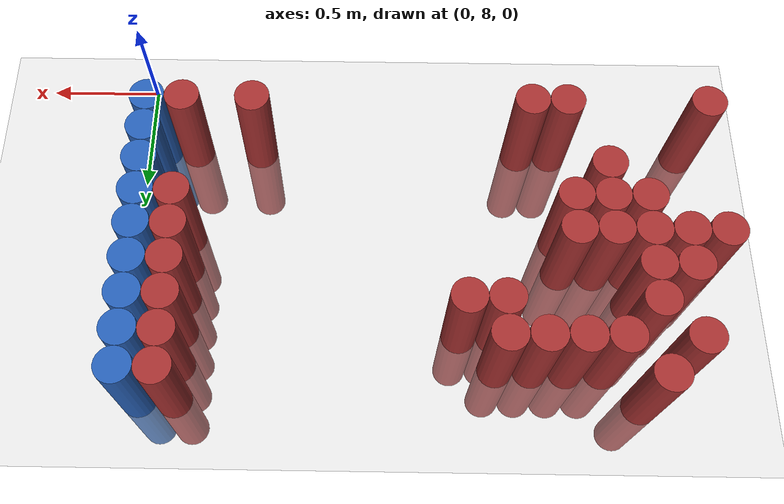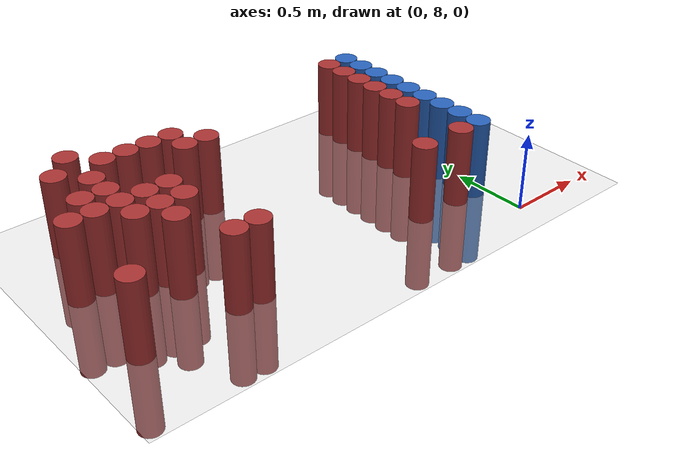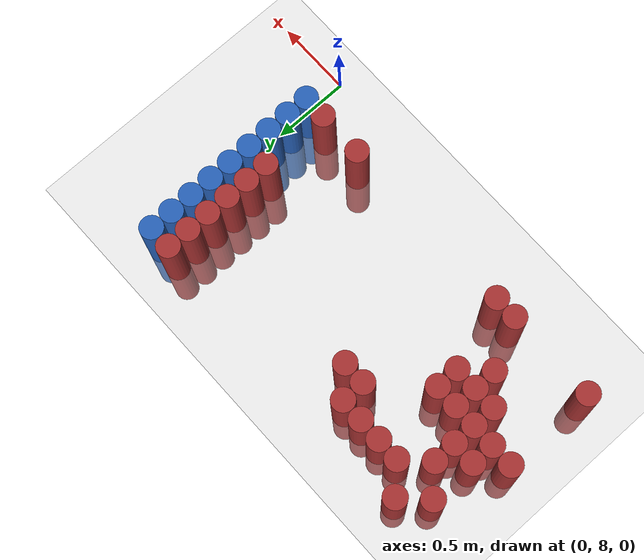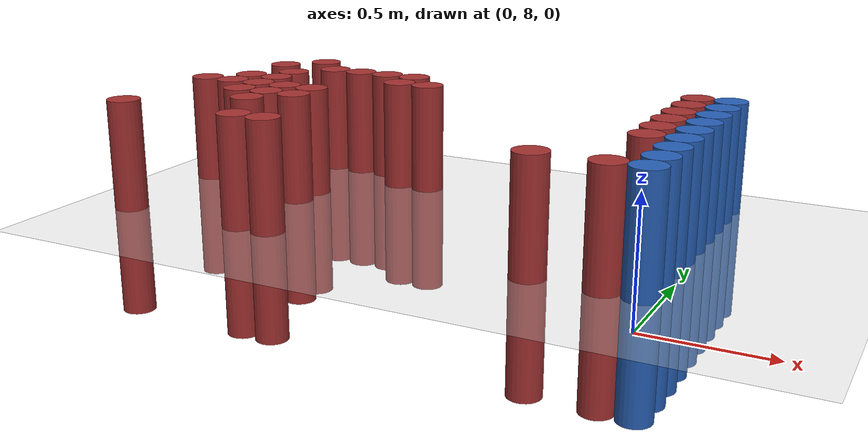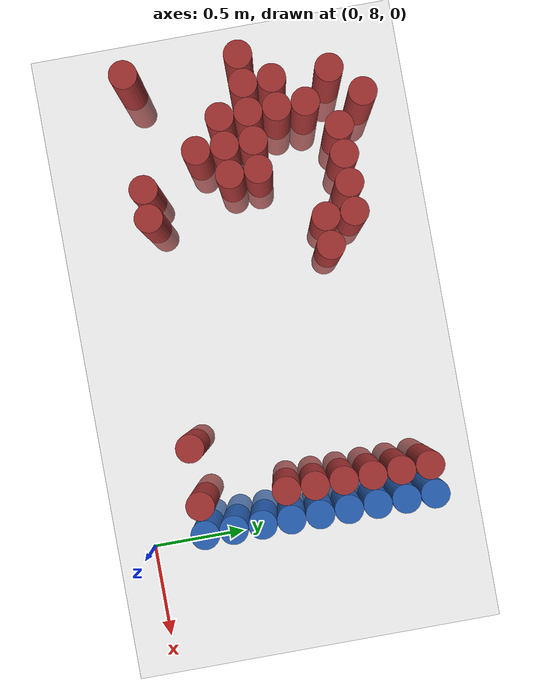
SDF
<sdf version="1.6">
 <world name="default">
  <model name="ground_plane">
   <static>1</static>
   <link name="link">
    <collision name="collision">
     <geometry><plane><normal>0 0 1</normal><size>100 100</size></plane></geometry>
     <surface><friction><ode><mu>100</mu><mu2>50</mu2></ode></friction></surface>
    </collision>
    <visual name="visual">
     <cast_shadows>0</cast_shadows>
     <geometry><plane><normal>0 0 1</normal><size>100 100</size></plane></geometry>
     <material>
      <script><uri>file://media/materials/scripts/gazebo.material</uri><name>Gazebo/Grey</name></script>
     </material>
    </visual>
   </link>
  </model>
  <model name="unit_cylinder_207">
   <static>1</static>
   <pose>-2.475000 8.325000 0.000000 0.000000 0.000000 0.000000</pose>
   <link name="link">
    <inertial>
     <mass>1</mass>
     <inertia><ixx>0.145833</ixx><ixy>0</ixy><ixz>0</ixz><iyy>0.145833</iyy><iyz>0</iyz><izz>0.125</izz></inertia>
    </inertial>
    <collision name="collision">
     <geometry><cylinder><radius>0.075000</radius><length>1</length></cylinder></geometry>
    </collision>
    <visual name="visual">
     <geometry><cylinder><radius>0.075000</radius><length>1</length></cylinder></geometry>
     <material>
      <ambient>0.648000 0.192000 0.192000 1</ambient>
      <diffuse>0.648000 0.192000 0.192000 1</diffuse>
     </material>
     <material>
      <script><name>Gazebo/Grey</name><uri>file://media/materials/scripts/gazebo.material</uri></script>
     </material>
    </visual>
    <sensor name="sensor_contact" type="contact"><contact><collision>collision</collision></contact></sensor>
   </link>
   <plugin filename="gz-sim-touchplugin-system" name="gz::sim::systems::TouchPlugin">
    <target>robot</target>
    <namespace>robot</namespace>
    <time>0.001</time>
    <enabled>true</enabled>
   </plugin>
  </model>
  <model name="unit_cylinder_208">
   <static>1</static>
   <pose>-2.475000 8.925000 0.000000 0.000000 0.000000 0.000000</pose>
   <link name="link">
    <inertial>
     <mass>1</mass>
     <inertia><ixx>0.145833</ixx><ixy>0</ixy><ixz>0</ixz><iyy>0.145833</iyy><iyz>0</iyz><izz>0.125</izz></inertia>
    </inertial>
    <collision name="collision">
     <geometry><cylinder><radius>0.075000</radius><length>1</length></cylinder></geometry>
    </collision>
    <visual name="visual">
     <geometry><cylinder><radius>0.075000</radius><length>1</length></cylinder></geometry>
     <material>
      <ambient>0.648000 0.192000 0.192000 1</ambient>
      <diffuse>0.648000 0.192000 0.192000 1</diffuse>
     </material>
     <material>
      <script><name>Gazebo/Grey</name><uri>file://media/materials/scripts/gazebo.material</uri></script>
     </material>
    </visual>
    <sensor name="sensor_contact" type="contact"><contact><collision>collision</collision></contact></sensor>
   </link>
   <plugin filename="gz-sim-touchplugin-system" name="gz::sim::systems::TouchPlugin">
    <target>robot</target>
    <namespace>robot</namespace>
    <time>0.001</time>
    <enabled>true</enabled>
   </plugin>
  </model>
  <model name="unit_cylinder_212">
   <static>1</static>
   <pose>-2.325000 8.925000 0.000000 0.000000 0.000000 0.000000</pose>
   <link name="link">
    <inertial>
     <mass>1</mass>
     <inertia><ixx>0.145833</ixx><ixy>0</ixy><ixz>0</ixz><iyy>0.145833</iyy><iyz>0</iyz><izz>0.125</izz></inertia>
    </inertial>
    <collision name="collision">
     <geometry><cylinder><radius>0.075000</radius><length>1</length></cylinder></geometry>
    </collision>
    <visual name="visual">
     <geometry><cylinder><radius>0.075000</radius><length>1</length></cylinder></geometry>
     <material>
      <ambient>0.648000 0.192000 0.192000 1</ambient>
      <diffuse>0.648000 0.192000 0.192000 1</diffuse>
     </material>
     <material>
      <script><name>Gazebo/Grey</name><uri>file://media/materials/scripts/gazebo.material</uri></script>
     </material>
    </visual>
    <sensor name="sensor_contact" type="contact"><contact><collision>collision</collision></contact></sensor>
   </link>
   <plugin filename="gz-sim-touchplugin-system" name="gz::sim::systems::TouchPlugin">
    <target>robot</target>
    <namespace>robot</namespace>
    <time>0.001</time>
    <enabled>true</enabled>
   </plugin>
  </model>
  <model name="unit_cylinder_213">
   <static>1</static>
   <pose>-2.325000 9.075000 0.000000 0.000000 0.000000 0.000000</pose>
   <link name="link">
    <inertial>
     <mass>1</mass>
     <inertia><ixx>0.145833</ixx><ixy>0</ixy><ixz>0</ixz><iyy>0.145833</iyy><iyz>0</iyz><izz>0.125</izz></inertia>
    </inertial>
    <collision name="collision">
     <geometry><cylinder><radius>0.075000</radius><length>1</length></cylinder></geometry>
    </collision>
    <visual name="visual">
     <geometry><cylinder><radius>0.075000</radius><length>1</length></cylinder></geometry>
     <material>
      <ambient>0.648000 0.192000 0.192000 1</ambient>
      <diffuse>0.648000 0.192000 0.192000 1</diffuse>
     </material>
     <material>
      <script><name>Gazebo/Grey</name><uri>file://media/materials/scripts/gazebo.material</uri></script>
     </material>
    </visual>
    <sensor name="sensor_contact" type="contact"><contact><collision>collision</collision></contact></sensor>
   </link>
   <plugin filename="gz-sim-touchplugin-system" name="gz::sim::systems::TouchPlugin">
    <target>robot</target>
    <namespace>robot</namespace>
    <time>0.001</time>
    <enabled>true</enabled>
   </plugin>
  </model>
  <model name="unit_cylinder_214">
   <static>1</static>
   <pose>-2.325000 9.375000 0.000000 0.000000 0.000000 0.000000</pose>
   <link name="link">
    <inertial>
     <mass>1</mass>
     <inertia><ixx>0.145833</ixx><ixy>0</ixy><ixz>0</ixz><iyy>0.145833</iyy><iyz>0</iyz><izz>0.125</izz></inertia>
    </inertial>
    <collision name="collision">
     <geometry><cylinder><radius>0.075000</radius><length>1</length></cylinder></geometry>
    </collision>
    <visual name="visual">
     <geometry><cylinder><radius>0.075000</radius><length>1</length></cylinder></geometry>
     <material>
      <ambient>0.648000 0.192000 0.192000 1</ambient>
      <diffuse>0.648000 0.192000 0.192000 1</diffuse>
     </material>
     <material>
      <script><name>Gazebo/Grey</name><uri>file://media/materials/scripts/gazebo.material</uri></script>
     </material>
    </visual>
    <sensor name="sensor_contact" type="contact"><contact><collision>collision</collision></contact></sensor>
   </link>
   <plugin filename="gz-sim-touchplugin-system" name="gz::sim::systems::TouchPlugin">
    <target>robot</target>
    <namespace>robot</namespace>
    <time>0.001</time>
    <enabled>true</enabled>
   </plugin>
  </model>
  <model name="unit_cylinder_217">
   <static>1</static>
   <pose>-2.175000 8.775000 0.000000 0.000000 0.000000 0.000000</pose>
   <link name="link">
    <inertial>
     <mass>1</mass>
     <inertia><ixx>0.145833</ixx><ixy>0</ixy><ixz>0</ixz><iyy>0.145833</iyy><iyz>0</iyz><izz>0.125</izz></inertia>
    </inertial>
    <collision name="collision">
     <geometry><cylinder><radius>0.075000</radius><length>1</length></cylinder></geometry>
    </collision>
    <visual name="visual">
     <geometry><cylinder><radius>0.075000</radius><length>1</length></cylinder></geometry>
     <material>
      <ambient>0.648000 0.192000 0.192000 1</ambient>
      <diffuse>0.648000 0.192000 0.192000 1</diffuse>
     </material>
     <material>
      <script><name>Gazebo/Grey</name><uri>file://media/materials/scripts/gazebo.material</uri></script>
     </material>
    </visual>
    <sensor name="sensor_contact" type="contact"><contact><collision>collision</collision></contact></sensor>
   </link>
   <plugin filename="gz-sim-touchplugin-system" name="gz::sim::systems::TouchPlugin">
    <target>robot</target>
    <namespace>robot</namespace>
    <time>0.001</time>
    <enabled>true</enabled>
   </plugin>
  </model>
  <model name="unit_cylinder_218">
   <static>1</static>
   <pose>-2.175000 8.925000 0.000000 0.000000 0.000000 0.000000</pose>
   <link name="link">
    <inertial>
     <mass>1</mass>
     <inertia><ixx>0.145833</ixx><ixy>0</ixy><ixz>0</ixz><iyy>0.145833</iyy><iyz>0</iyz><izz>0.125</izz></inertia>
    </inertial>
    <collision name="collision">
     <geometry><cylinder><radius>0.075000</radius><length>1</length></cylinder></geometry>
    </collision>
    <visual name="visual">
     <geometry><cylinder><radius>0.075000</radius><length>1</length></cylinder></geometry>
     <material>
      <ambient>0.648000 0.192000 0.192000 1</ambient>
      <diffuse>0.648000 0.192000 0.192000 1</diffuse>
     </material>
     <material>
      <script><name>Gazebo/Grey</name><uri>file://media/materials/scripts/gazebo.material</uri></script>
     </material>
    </visual>
    <sensor name="sensor_contact" type="contact"><contact><collision>collision</collision></contact></sensor>
   </link>
   <plugin filename="gz-sim-touchplugin-system" name="gz::sim::systems::TouchPlugin">
    <target>robot</target>
    <namespace>robot</namespace>
    <time>0.001</time>
    <enabled>true</enabled>
   </plugin>
  </model>
  <model name="unit_cylinder_219">
   <static>1</static>
   <pose>-2.175000 9.075000 0.000000 0.000000 0.000000 0.000000</pose>
   <link name="link">
    <inertial>
     <mass>1</mass>
     <inertia><ixx>0.145833</ixx><ixy>0</ixy><ixz>0</ixz><iyy>0.145833</iyy><iyz>0</iyz><izz>0.125</izz></inertia>
    </inertial>
    <collision name="collision">
     <geometry><cylinder><radius>0.075000</radius><length>1</length></cylinder></geometry>
    </collision>
    <visual name="visual">
     <geometry><cylinder><radius>0.075000</radius><length>1</length></cylinder></geometry>
     <material>
      <ambient>0.648000 0.192000 0.192000 1</ambient>
      <diffuse>0.648000 0.192000 0.192000 1</diffuse>
     </material>
     <material>
      <script><name>Gazebo/Grey</name><uri>file://media/materials/scripts/gazebo.material</uri></script>
     </material>
    </visual>
    <sensor name="sensor_contact" type="contact"><contact><collision>collision</collision></contact></sensor>
   </link>
   <plugin filename="gz-sim-touchplugin-system" name="gz::sim::systems::TouchPlugin">
    <target>robot</target>
    <namespace>robot</namespace>
    <time>0.001</time>
    <enabled>true</enabled>
   </plugin>
  </model>
  <model name="unit_cylinder_220">
   <static>1</static>
   <pose>-2.175000 9.225000 0.000000 0.000000 0.000000 0.000000</pose>
   <link name="link">
    <inertial>
     <mass>1</mass>
     <inertia><ixx>0.145833</ixx><ixy>0</ixy><ixz>0</ixz><iyy>0.145833</iyy><iyz>0</iyz><izz>0.125</izz></inertia>
    </inertial>
    <collision name="collision">
     <geometry><cylinder><radius>0.075000</radius><length>1</length></cylinder></geometry>
    </collision>
    <visual name="visual">
     <geometry><cylinder><radius>0.075000</radius><length>1</length></cylinder></geometry>
     <material>
      <ambient>0.648000 0.192000 0.192000 1</ambient>
      <diffuse>0.648000 0.192000 0.192000 1</diffuse>
     </material>
     <material>
      <script><name>Gazebo/Grey</name><uri>file://media/materials/scripts/gazebo.material</uri></script>
     </material>
    </visual>
    <sensor name="sensor_contact" type="contact"><contact><collision>collision</collision></contact></sensor>
   </link>
   <plugin filename="gz-sim-touchplugin-system" name="gz::sim::systems::TouchPlugin">
    <target>robot</target>
    <namespace>robot</namespace>
    <time>0.001</time>
    <enabled>true</enabled>
   </plugin>
  </model>
  <model name="unit_cylinder_221">
   <static>1</static>
   <pose>-2.175000 9.525000 0.000000 0.000000 0.000000 0.000000</pose>
   <link name="link">
    <inertial>
     <mass>1</mass>
     <inertia><ixx>0.145833</ixx><ixy>0</ixy><ixz>0</ixz><iyy>0.145833</iyy><iyz>0</iyz><izz>0.125</izz></inertia>
    </inertial>
    <collision name="collision">
     <geometry><cylinder><radius>0.075000</radius><length>1</length></cylinder></geometry>
    </collision>
    <visual name="visual">
     <geometry><cylinder><radius>0.075000</radius><length>1</length></cylinder></geometry>
     <material>
      <ambient>0.648000 0.192000 0.192000 1</ambient>
      <diffuse>0.648000 0.192000 0.192000 1</diffuse>
     </material>
     <material>
      <script><name>Gazebo/Grey</name><uri>file://media/materials/scripts/gazebo.material</uri></script>
     </material>
    </visual>
    <sensor name="sensor_contact" type="contact"><contact><collision>collision</collision></contact></sensor>
   </link>
   <plugin filename="gz-sim-touchplugin-system" name="gz::sim::systems::TouchPlugin">
    <target>robot</target>
    <namespace>robot</namespace>
    <time>0.001</time>
    <enabled>true</enabled>
   </plugin>
  </model>
  <model name="unit_cylinder_222">
   <static>1</static>
   <pose>-2.025000 8.625000 0.000000 0.000000 0.000000 0.000000</pose>
   <link name="link">
    <inertial>
     <mass>1</mass>
     <inertia><ixx>0.145833</ixx><ixy>0</ixy><ixz>0</ixz><iyy>0.145833</iyy><iyz>0</iyz><izz>0.125</izz></inertia>
    </inertial>
    <collision name="collision">
     <geometry><cylinder><radius>0.075000</radius><length>1</length></cylinder></geometry>
    </collision>
    <visual name="visual">
     <geometry><cylinder><radius>0.075000</radius><length>1</length></cylinder></geometry>
     <material>
      <ambient>0.648000 0.192000 0.192000 1</ambient>
      <diffuse>0.648000 0.192000 0.192000 1</diffuse>
     </material>
     <material>
      <script><name>Gazebo/Grey</name><uri>file://media/materials/scripts/gazebo.material</uri></script>
     </material>
    </visual>
    <sensor name="sensor_contact" type="contact"><contact><collision>collision</collision></contact></sensor>
   </link>
   <plugin filename="gz-sim-touchplugin-system" name="gz::sim::systems::TouchPlugin">
    <target>robot</target>
    <namespace>robot</namespace>
    <time>0.001</time>
    <enabled>true</enabled>
   </plugin>
  </model>
  <model name="unit_cylinder_223">
   <static>1</static>
   <pose>-2.025000 8.775000 0.000000 0.000000 0.000000 0.000000</pose>
   <link name="link">
    <inertial>
     <mass>1</mass>
     <inertia><ixx>0.145833</ixx><ixy>0</ixy><ixz>0</ixz><iyy>0.145833</iyy><iyz>0</iyz><izz>0.125</izz></inertia>
    </inertial>
    <collision name="collision">
     <geometry><cylinder><radius>0.075000</radius><length>1</length></cylinder></geometry>
    </collision>
    <visual name="visual">
     <geometry><cylinder><radius>0.075000</radius><length>1</length></cylinder></geometry>
     <material>
      <ambient>0.648000 0.192000 0.192000 1</ambient>
      <diffuse>0.648000 0.192000 0.192000 1</diffuse>
     </material>
     <material>
      <script><name>Gazebo/Grey</name><uri>file://media/materials/scripts/gazebo.material</uri></script>
     </material>
    </visual>
    <sensor name="sensor_contact" type="contact"><contact><collision>collision</collision></contact></sensor>
   </link>
   <plugin filename="gz-sim-touchplugin-system" name="gz::sim::systems::TouchPlugin">
    <target>robot</target>
    <namespace>robot</namespace>
    <time>0.001</time>
    <enabled>true</enabled>
   </plugin>
  </model>
  <model name="unit_cylinder_224">
   <static>1</static>
   <pose>-2.025000 8.925000 0.000000 0.000000 0.000000 0.000000</pose>
   <link name="link">
    <inertial>
     <mass>1</mass>
     <inertia><ixx>0.145833</ixx><ixy>0</ixy><ixz>0</ixz><iyy>0.145833</iyy><iyz>0</iyz><izz>0.125</izz></inertia>
    </inertial>
    <collision name="collision">
     <geometry><cylinder><radius>0.075000</radius><length>1</length></cylinder></geometry>
    </collision>
    <visual name="visual">
     <geometry><cylinder><radius>0.075000</radius><length>1</length></cylinder></geometry>
     <material>
      <ambient>0.648000 0.192000 0.192000 1</ambient>
      <diffuse>0.648000 0.192000 0.192000 1</diffuse>
     </material>
     <material>
      <script><name>Gazebo/Grey</name><uri>file://media/materials/scripts/gazebo.material</uri></script>
     </material>
    </visual>
    <sensor name="sensor_contact" type="contact"><contact><collision>collision</collision></contact></sensor>
   </link>
   <plugin filename="gz-sim-touchplugin-system" name="gz::sim::systems::TouchPlugin">
    <target>robot</target>
    <namespace>robot</namespace>
    <time>0.001</time>
    <enabled>true</enabled>
   </plugin>
  </model>
  <model name="unit_cylinder_225">
   <static>1</static>
   <pose>-2.025000 9.375000 0.000000 0.000000 0.000000 0.000000</pose>
   <link name="link">
    <inertial>
     <mass>1</mass>
     <inertia><ixx>0.145833</ixx><ixy>0</ixy><ixz>0</ixz><iyy>0.145833</iyy><iyz>0</iyz><izz>0.125</izz></inertia>
    </inertial>
    <collision name="collision">
     <geometry><cylinder><radius>0.075000</radius><length>1</length></cylinder></geometry>
    </collision>
    <visual name="visual">
     <geometry><cylinder><radius>0.075000</radius><length>1</length></cylinder></geometry>
     <material>
      <ambient>0.648000 0.192000 0.192000 1</ambient>
      <diffuse>0.648000 0.192000 0.192000 1</diffuse>
     </material>
     <material>
      <script><name>Gazebo/Grey</name><uri>file://media/materials/scripts/gazebo.material</uri></script>
     </material>
    </visual>
    <sensor name="sensor_contact" type="contact"><contact><collision>collision</collision></contact></sensor>
   </link>
   <plugin filename="gz-sim-touchplugin-system" name="gz::sim::systems::TouchPlugin">
    <target>robot</target>
    <namespace>robot</namespace>
    <time>0.001</time>
    <enabled>true</enabled>
   </plugin>
  </model>
  <model name="unit_cylinder_229">
   <static>1</static>
   <pose>-1.875000 8.325000 0.000000 0.000000 0.000000 0.000000</pose>
   <link name="link">
    <inertial>
     <mass>1</mass>
     <inertia><ixx>0.145833</ixx><ixy>0</ixy><ixz>0</ixz><iyy>0.145833</iyy><iyz>0</iyz><izz>0.125</izz></inertia>
    </inertial>
    <collision name="collision">
     <geometry><cylinder><radius>0.075000</radius><length>1</length></cylinder></geometry>
    </collision>
    <visual name="visual">
     <geometry><cylinder><radius>0.075000</radius><length>1</length></cylinder></geometry>
     <material>
      <ambient>0.648000 0.192000 0.192000 1</ambient>
      <diffuse>0.648000 0.192000 0.192000 1</diffuse>
     </material>
     <material>
      <script><name>Gazebo/Grey</name><uri>file://media/materials/scripts/gazebo.material</uri></script>
     </material>
    </visual>
    <sensor name="sensor_contact" type="contact"><contact><collision>collision</collision></contact></sensor>
   </link>
   <plugin filename="gz-sim-touchplugin-system" name="gz::sim::systems::TouchPlugin">
    <target>robot</target>
    <namespace>robot</namespace>
    <time>0.001</time>
    <enabled>true</enabled>
   </plugin>
  </model>
  <model name="unit_cylinder_230">
   <static>1</static>
   <pose>-1.875000 8.775000 0.000000 0.000000 0.000000 0.000000</pose>
   <link name="link">
    <inertial>
     <mass>1</mass>
     <inertia><ixx>0.145833</ixx><ixy>0</ixy><ixz>0</ixz><iyy>0.145833</iyy><iyz>0</iyz><izz>0.125</izz></inertia>
    </inertial>
    <collision name="collision">
     <geometry><cylinder><radius>0.075000</radius><length>1</length></cylinder></geometry>
    </collision>
    <visual name="visual">
     <geometry><cylinder><radius>0.075000</radius><length>1</length></cylinder></geometry>
     <material>
      <ambient>0.648000 0.192000 0.192000 1</ambient>
      <diffuse>0.648000 0.192000 0.192000 1</diffuse>
     </material>
     <material>
      <script><name>Gazebo/Grey</name><uri>file://media/materials/scripts/gazebo.material</uri></script>
     </material>
    </visual>
    <sensor name="sensor_contact" type="contact"><contact><collision>collision</collision></contact></sensor>
   </link>
   <plugin filename="gz-sim-touchplugin-system" name="gz::sim::systems::TouchPlugin">
    <target>robot</target>
    <namespace>robot</namespace>
    <time>0.001</time>
    <enabled>true</enabled>
   </plugin>
  </model>
  <model name="unit_cylinder_231">
   <static>1</static>
   <pose>-1.875000 8.925000 0.000000 0.000000 0.000000 0.000000</pose>
   <link name="link">
    <inertial>
     <mass>1</mass>
     <inertia><ixx>0.145833</ixx><ixy>0</ixy><ixz>0</ixz><iyy>0.145833</iyy><iyz>0</iyz><izz>0.125</izz></inertia>
    </inertial>
    <collision name="collision">
     <geometry><cylinder><radius>0.075000</radius><length>1</length></cylinder></geometry>
    </collision>
    <visual name="visual">
     <geometry><cylinder><radius>0.075000</radius><length>1</length></cylinder></geometry>
     <material>
      <ambient>0.648000 0.192000 0.192000 1</ambient>
      <diffuse>0.648000 0.192000 0.192000 1</diffuse>
     </material>
     <material>
      <script><name>Gazebo/Grey</name><uri>file://media/materials/scripts/gazebo.material</uri></script>
     </material>
    </visual>
    <sensor name="sensor_contact" type="contact"><contact><collision>collision</collision></contact></sensor>
   </link>
   <plugin filename="gz-sim-touchplugin-system" name="gz::sim::systems::TouchPlugin">
    <target>robot</target>
    <namespace>robot</namespace>
    <time>0.001</time>
    <enabled>true</enabled>
   </plugin>
  </model>
  <model name="unit_cylinder_232">
   <static>1</static>
   <pose>-1.875000 9.375000 0.000000 0.000000 0.000000 0.000000</pose>
   <link name="link">
    <inertial>
     <mass>1</mass>
     <inertia><ixx>0.145833</ixx><ixy>0</ixy><ixz>0</ixz><iyy>0.145833</iyy><iyz>0</iyz><izz>0.125</izz></inertia>
    </inertial>
    <collision name="collision">
     <geometry><cylinder><radius>0.075000</radius><length>1</length></cylinder></geometry>
    </collision>
    <visual name="visual">
     <geometry><cylinder><radius>0.075000</radius><length>1</length></cylinder></geometry>
     <material>
      <ambient>0.648000 0.192000 0.192000 1</ambient>
      <diffuse>0.648000 0.192000 0.192000 1</diffuse>
     </material>
     <material>
      <script><name>Gazebo/Grey</name><uri>file://media/materials/scripts/gazebo.material</uri></script>
     </material>
    </visual>
    <sensor name="sensor_contact" type="contact"><contact><collision>collision</collision></contact></sensor>
   </link>
   <plugin filename="gz-sim-touchplugin-system" name="gz::sim::systems::TouchPlugin">
    <target>robot</target>
    <namespace>robot</namespace>
    <time>0.001</time>
    <enabled>true</enabled>
   </plugin>
  </model>
  <model name="unit_cylinder_240">
   <static>1</static>
   <pose>-1.725000 8.325000 0.000000 0.000000 0.000000 0.000000</pose>
   <link name="link">
    <inertial>
     <mass>1</mass>
     <inertia><ixx>0.145833</ixx><ixy>0</ixy><ixz>0</ixz><iyy>0.145833</iyy><iyz>0</iyz><izz>0.125</izz></inertia>
    </inertial>
    <collision name="collision">
     <geometry><cylinder><radius>0.075000</radius><length>1</length></cylinder></geometry>
    </collision>
    <visual name="visual">
     <geometry><cylinder><radius>0.075000</radius><length>1</length></cylinder></geometry>
     <material>
      <ambient>0.648000 0.192000 0.192000 1</ambient>
      <diffuse>0.648000 0.192000 0.192000 1</diffuse>
     </material>
     <material>
      <script><name>Gazebo/Grey</name><uri>file://media/materials/scripts/gazebo.material</uri></script>
     </material>
    </visual>
    <sensor name="sensor_contact" type="contact"><contact><collision>collision</collision></contact></sensor>
   </link>
   <plugin filename="gz-sim-touchplugin-system" name="gz::sim::systems::TouchPlugin">
    <target>robot</target>
    <namespace>robot</namespace>
    <time>0.001</time>
    <enabled>true</enabled>
   </plugin>
  </model>
  <model name="unit_cylinder_241">
   <static>1</static>
   <pose>-1.725000 9.375000 0.000000 0.000000 0.000000 0.000000</pose>
   <link name="link">
    <inertial>
     <mass>1</mass>
     <inertia><ixx>0.145833</ixx><ixy>0</ixy><ixz>0</ixz><iyy>0.145833</iyy><iyz>0</iyz><izz>0.125</izz></inertia>
    </inertial>
    <collision name="collision">
     <geometry><cylinder><radius>0.075000</radius><length>1</length></cylinder></geometry>
    </collision>
    <visual name="visual">
     <geometry><cylinder><radius>0.075000</radius><length>1</length></cylinder></geometry>
     <material>
      <ambient>0.648000 0.192000 0.192000 1</ambient>
      <diffuse>0.648000 0.192000 0.192000 1</diffuse>
     </material>
     <material>
      <script><name>Gazebo/Grey</name><uri>file://media/materials/scripts/gazebo.material</uri></script>
     </material>
    </visual>
    <sensor name="sensor_contact" type="contact"><contact><collision>collision</collision></contact></sensor>
   </link>
   <plugin filename="gz-sim-touchplugin-system" name="gz::sim::systems::TouchPlugin">
    <target>robot</target>
    <namespace>robot</namespace>
    <time>0.001</time>
    <enabled>true</enabled>
   </plugin>
  </model>
  <model name="unit_cylinder_254">
   <static>1</static>
   <pose>-1.575000 9.225000 0.000000 0.000000 0.000000 0.000000</pose>
   <link name="link">
    <inertial>
     <mass>1</mass>
     <inertia><ixx>0.145833</ixx><ixy>0</ixy><ixz>0</ixz><iyy>0.145833</iyy><iyz>0</iyz><izz>0.125</izz></inertia>
    </inertial>
    <collision name="collision">
     <geometry><cylinder><radius>0.075000</radius><length>1</length></cylinder></geometry>
    </collision>
    <visual name="visual">
     <geometry><cylinder><radius>0.075000</radius><length>1</length></cylinder></geometry>
     <material>
      <ambient>0.648000 0.192000 0.192000 1</ambient>
      <diffuse>0.648000 0.192000 0.192000 1</diffuse>
     </material>
     <material>
      <script><name>Gazebo/Grey</name><uri>file://media/materials/scripts/gazebo.material</uri></script>
     </material>
    </visual>
    <sensor name="sensor_contact" type="contact"><contact><collision>collision</collision></contact></sensor>
   </link>
   <plugin filename="gz-sim-touchplugin-system" name="gz::sim::systems::TouchPlugin">
    <target>robot</target>
    <namespace>robot</namespace>
    <time>0.001</time>
    <enabled>true</enabled>
   </plugin>
  </model>
  <model name="unit_cylinder_255">
   <static>1</static>
   <pose>-1.575000 9.375000 0.000000 0.000000 0.000000 0.000000</pose>
   <link name="link">
    <inertial>
     <mass>1</mass>
     <inertia><ixx>0.145833</ixx><ixy>0</ixy><ixz>0</ixz><iyy>0.145833</iyy><iyz>0</iyz><izz>0.125</izz></inertia>
    </inertial>
    <collision name="collision">
     <geometry><cylinder><radius>0.075000</radius><length>1</length></cylinder></geometry>
    </collision>
    <visual name="visual">
     <geometry><cylinder><radius>0.075000</radius><length>1</length></cylinder></geometry>
     <material>
      <ambient>0.648000 0.192000 0.192000 1</ambient>
      <diffuse>0.648000 0.192000 0.192000 1</diffuse>
     </material>
     <material>
      <script><name>Gazebo/Grey</name><uri>file://media/materials/scripts/gazebo.material</uri></script>
     </material>
    </visual>
    <sensor name="sensor_contact" type="contact"><contact><collision>collision</collision></contact></sensor>
   </link>
   <plugin filename="gz-sim-touchplugin-system" name="gz::sim::systems::TouchPlugin">
    <target>robot</target>
    <namespace>robot</namespace>
    <time>0.001</time>
    <enabled>true</enabled>
   </plugin>
  </model>
  <model name="unit_cylinder_264">
   <static>1</static>
   <pose>-1.425000 9.225000 0.000000 0.000000 0.000000 0.000000</pose>
   <link name="link">
    <inertial>
     <mass>1</mass>
     <inertia><ixx>0.145833</ixx><ixy>0</ixy><ixz>0</ixz><iyy>0.145833</iyy><iyz>0</iyz><izz>0.125</izz></inertia>
    </inertial>
    <collision name="collision">
     <geometry><cylinder><radius>0.075000</radius><length>1</length></cylinder></geometry>
    </collision>
    <visual name="visual">
     <geometry><cylinder><radius>0.075000</radius><length>1</length></cylinder></geometry>
     <material>
      <ambient>0.648000 0.192000 0.192000 1</ambient>
      <diffuse>0.648000 0.192000 0.192000 1</diffuse>
     </material>
     <material>
      <script><name>Gazebo/Grey</name><uri>file://media/materials/scripts/gazebo.material</uri></script>
     </material>
    </visual>
    <sensor name="sensor_contact" type="contact"><contact><collision>collision</collision></contact></sensor>
   </link>
   <plugin filename="gz-sim-touchplugin-system" name="gz::sim::systems::TouchPlugin">
    <target>robot</target>
    <namespace>robot</namespace>
    <time>0.001</time>
    <enabled>true</enabled>
   </plugin>
  </model>
  <model name="unit_cylinder_290">
   <static>1</static>
   <pose>-0.525000 8.325000 0.000000 0.000000 0.000000 0.000000</pose>
   <link name="link">
    <inertial>
     <mass>1</mass>
     <inertia><ixx>0.145833</ixx><ixy>0</ixy><ixz>0</ixz><iyy>0.145833</iyy><iyz>0</iyz><izz>0.125</izz></inertia>
    </inertial>
    <collision name="collision">
     <geometry><cylinder><radius>0.075000</radius><length>1</length></cylinder></geometry>
    </collision>
    <visual name="visual">
     <geometry><cylinder><radius>0.075000</radius><length>1</length></cylinder></geometry>
     <material>
      <ambient>0.648000 0.192000 0.192000 1</ambient>
      <diffuse>0.648000 0.192000 0.192000 1</diffuse>
     </material>
     <material>
      <script><name>Gazebo/Grey</name><uri>file://media/materials/scripts/gazebo.material</uri></script>
     </material>
    </visual>
    <sensor name="sensor_contact" type="contact"><contact><collision>collision</collision></contact></sensor>
   </link>
   <plugin filename="gz-sim-touchplugin-system" name="gz::sim::systems::TouchPlugin">
    <target>robot</target>
    <namespace>robot</namespace>
    <time>0.001</time>
    <enabled>true</enabled>
   </plugin>
  </model>
  <model name="unit_cylinder_318">
   <static>1</static>
   <pose>-0.225000 8.325000 0.000000 0.000000 0.000000 0.000000</pose>
   <link name="link">
    <inertial>
     <mass>1</mass>
     <inertia><ixx>0.145833</ixx><ixy>0</ixy><ixz>0</ixz><iyy>0.145833</iyy><iyz>0</iyz><izz>0.125</izz></inertia>
    </inertial>
    <collision name="collision">
     <geometry><cylinder><radius>0.075000</radius><length>1</length></cylinder></geometry>
    </collision>
    <visual name="visual">
     <geometry><cylinder><radius>0.075000</radius><length>1</length></cylinder></geometry>
     <material>
      <ambient>0.648000 0.192000 0.192000 1</ambient>
      <diffuse>0.648000 0.192000 0.192000 1</diffuse>
     </material>
     <material>
      <script><name>Gazebo/Grey</name><uri>file://media/materials/scripts/gazebo.material</uri></script>
     </material>
    </visual>
    <sensor name="sensor_contact" type="contact"><contact><collision>collision</collision></contact></sensor>
   </link>
   <plugin filename="gz-sim-touchplugin-system" name="gz::sim::systems::TouchPlugin">
    <target>robot</target>
    <namespace>robot</namespace>
    <time>0.001</time>
    <enabled>true</enabled>
   </plugin>
  </model>
  <model name="unit_cylinder_319">
   <static>1</static>
   <pose>-0.225000 8.775000 0.000000 0.000000 0.000000 0.000000</pose>
   <link name="link">
    <inertial>
     <mass>1</mass>
     <inertia><ixx>0.145833</ixx><ixy>0</ixy><ixz>0</ixz><iyy>0.145833</iyy><iyz>0</iyz><izz>0.125</izz></inertia>
    </inertial>
    <collision name="collision">
     <geometry><cylinder><radius>0.075000</radius><length>1</length></cylinder></geometry>
    </collision>
    <visual name="visual">
     <geometry><cylinder><radius>0.075000</radius><length>1</length></cylinder></geometry>
     <material>
      <ambient>0.648000 0.192000 0.192000 1</ambient>
      <diffuse>0.648000 0.192000 0.192000 1</diffuse>
     </material>
     <material>
      <script><name>Gazebo/Grey</name><uri>file://media/materials/scripts/gazebo.material</uri></script>
     </material>
    </visual>
    <sensor name="sensor_contact" type="contact"><contact><collision>collision</collision></contact></sensor>
   </link>
   <plugin filename="gz-sim-touchplugin-system" name="gz::sim::systems::TouchPlugin">
    <target>robot</target>
    <namespace>robot</namespace>
    <time>0.001</time>
    <enabled>true</enabled>
   </plugin>
  </model>
  <model name="unit_cylinder_320">
   <static>1</static>
   <pose>-0.225000 8.925000 0.000000 0.000000 0.000000 0.000000</pose>
   <link name="link">
    <inertial>
     <mass>1</mass>
     <inertia><ixx>0.145833</ixx><ixy>0</ixy><ixz>0</ixz><iyy>0.145833</iyy><iyz>0</iyz><izz>0.125</izz></inertia>
    </inertial>
    <collision name="collision">
     <geometry><cylinder><radius>0.075000</radius><length>1</length></cylinder></geometry>
    </collision>
    <visual name="visual">
     <geometry><cylinder><radius>0.075000</radius><length>1</length></cylinder></geometry>
     <material>
      <ambient>0.648000 0.192000 0.192000 1</ambient>
      <diffuse>0.648000 0.192000 0.192000 1</diffuse>
     </material>
     <material>
      <script><name>Gazebo/Grey</name><uri>file://media/materials/scripts/gazebo.material</uri></script>
     </material>
    </visual>
    <sensor name="sensor_contact" type="contact"><contact><collision>collision</collision></contact></sensor>
   </link>
   <plugin filename="gz-sim-touchplugin-system" name="gz::sim::systems::TouchPlugin">
    <target>robot</target>
    <namespace>robot</namespace>
    <time>0.001</time>
    <enabled>true</enabled>
   </plugin>
  </model>
  <model name="unit_cylinder_321">
   <static>1</static>
   <pose>-0.225000 9.075000 0.000000 0.000000 0.000000 0.000000</pose>
   <link name="link">
    <inertial>
     <mass>1</mass>
     <inertia><ixx>0.145833</ixx><ixy>0</ixy><ixz>0</ixz><iyy>0.145833</iyy><iyz>0</iyz><izz>0.125</izz></inertia>
    </inertial>
    <collision name="collision">
     <geometry><cylinder><radius>0.075000</radius><length>1</length></cylinder></geometry>
    </collision>
    <visual name="visual">
     <geometry><cylinder><radius>0.075000</radius><length>1</length></cylinder></geometry>
     <material>
      <ambient>0.648000 0.192000 0.192000 1</ambient>
      <diffuse>0.648000 0.192000 0.192000 1</diffuse>
     </material>
     <material>
      <script><name>Gazebo/Grey</name><uri>file://media/materials/scripts/gazebo.material</uri></script>
     </material>
    </visual>
    <sensor name="sensor_contact" type="contact"><contact><collision>collision</collision></contact></sensor>
   </link>
   <plugin filename="gz-sim-touchplugin-system" name="gz::sim::systems::TouchPlugin">
    <target>robot</target>
    <namespace>robot</namespace>
    <time>0.001</time>
    <enabled>true</enabled>
   </plugin>
  </model>
  <model name="unit_cylinder_322">
   <static>1</static>
   <pose>-0.225000 9.225000 0.000000 0.000000 0.000000 0.000000</pose>
   <link name="link">
    <inertial>
     <mass>1</mass>
     <inertia><ixx>0.145833</ixx><ixy>0</ixy><ixz>0</ixz><iyy>0.145833</iyy><iyz>0</iyz><izz>0.125</izz></inertia>
    </inertial>
    <collision name="collision">
     <geometry><cylinder><radius>0.075000</radius><length>1</length></cylinder></geometry>
    </collision>
    <visual name="visual">
     <geometry><cylinder><radius>0.075000</radius><length>1</length></cylinder></geometry>
     <material>
      <ambient>0.648000 0.192000 0.192000 1</ambient>
      <diffuse>0.648000 0.192000 0.192000 1</diffuse>
     </material>
     <material>
      <script><name>Gazebo/Grey</name><uri>file://media/materials/scripts/gazebo.material</uri></script>
     </material>
    </visual>
    <sensor name="sensor_contact" type="contact"><contact><collision>collision</collision></contact></sensor>
   </link>
   <plugin filename="gz-sim-touchplugin-system" name="gz::sim::systems::TouchPlugin">
    <target>robot</target>
    <namespace>robot</namespace>
    <time>0.001</time>
    <enabled>true</enabled>
   </plugin>
  </model>
  <model name="unit_cylinder_323">
   <static>1</static>
   <pose>-0.225000 9.375000 0.000000 0.000000 0.000000 0.000000</pose>
   <link name="link">
    <inertial>
     <mass>1</mass>
     <inertia><ixx>0.145833</ixx><ixy>0</ixy><ixz>0</ixz><iyy>0.145833</iyy><iyz>0</iyz><izz>0.125</izz></inertia>
    </inertial>
    <collision name="collision">
     <geometry><cylinder><radius>0.075000</radius><length>1</length></cylinder></geometry>
    </collision>
    <visual name="visual">
     <geometry><cylinder><radius>0.075000</radius><length>1</length></cylinder></geometry>
     <material>
      <ambient>0.648000 0.192000 0.192000 1</ambient>
      <diffuse>0.648000 0.192000 0.192000 1</diffuse>
     </material>
     <material>
      <script><name>Gazebo/Grey</name><uri>file://media/materials/scripts/gazebo.material</uri></script>
     </material>
    </visual>
    <sensor name="sensor_contact" type="contact"><contact><collision>collision</collision></contact></sensor>
   </link>
   <plugin filename="gz-sim-touchplugin-system" name="gz::sim::systems::TouchPlugin">
    <target>robot</target>
    <namespace>robot</namespace>
    <time>0.001</time>
    <enabled>true</enabled>
   </plugin>
  </model>
  <model name="unit_cylinder_324">
   <static>1</static>
   <pose>-0.225000 9.525000 0.000000 0.000000 0.000000 0.000000</pose>
   <link name="link">
    <inertial>
     <mass>1</mass>
     <inertia><ixx>0.145833</ixx><ixy>0</ixy><ixz>0</ixz><iyy>0.145833</iyy><iyz>0</iyz><izz>0.125</izz></inertia>
    </inertial>
    <collision name="collision">
     <geometry><cylinder><radius>0.075000</radius><length>1</length></cylinder></geometry>
    </collision>
    <visual name="visual">
     <geometry><cylinder><radius>0.075000</radius><length>1</length></cylinder></geometry>
     <material>
      <ambient>0.648000 0.192000 0.192000 1</ambient>
      <diffuse>0.648000 0.192000 0.192000 1</diffuse>
     </material>
     <material>
      <script><name>Gazebo/Grey</name><uri>file://media/materials/scripts/gazebo.material</uri></script>
     </material>
    </visual>
    <sensor name="sensor_contact" type="contact"><contact><collision>collision</collision></contact></sensor>
   </link>
   <plugin filename="gz-sim-touchplugin-system" name="gz::sim::systems::TouchPlugin">
    <target>robot</target>
    <namespace>robot</namespace>
    <time>0.001</time>
    <enabled>true</enabled>
   </plugin>
  </model>
  <model name="unit_cylinder_346">
   <static>1</static>
   <pose>-0.075000 8.325000 0.000000 0.000000 0.000000 0.000000</pose>
   <link name="link">
    <inertial>
     <mass>1</mass>
     <inertia><ixx>0.145833</ixx><ixy>0</ixy><ixz>0</ixz><iyy>0.145833</iyy><iyz>0</iyz><izz>0.125</izz></inertia>
    </inertial>
    <collision name="collision">
     <geometry><cylinder><radius>0.075000</radius><length>1</length></cylinder></geometry>
    </collision>
    <visual name="visual">
     <geometry><cylinder><radius>0.075000</radius><length>1</length></cylinder></geometry>
     <material>
      <ambient>0.152000 0.379000 0.720000 1</ambient>
      <diffuse>0.152000 0.379000 0.720000 1</diffuse>
     </material>
     <material>
      <script><name>Gazebo/Grey</name><uri>file://media/materials/scripts/gazebo.material</uri></script>
     </material>
    </visual>
    <sensor name="sensor_contact" type="contact"><contact><collision>collision</collision></contact></sensor>
   </link>
   <plugin filename="gz-sim-touchplugin-system" name="gz::sim::systems::TouchPlugin">
    <target>robot</target>
    <namespace>robot</namespace>
    <time>0.001</time>
    <enabled>true</enabled>
   </plugin>
  </model>
  <model name="unit_cylinder_347">
   <static>1</static>
   <pose>-0.075000 8.475000 0.000000 0.000000 0.000000 0.000000</pose>
   <link name="link">
    <inertial>
     <mass>1</mass>
     <inertia><ixx>0.145833</ixx><ixy>0</ixy><ixz>0</ixz><iyy>0.145833</iyy><iyz>0</iyz><izz>0.125</izz></inertia>
    </inertial>
    <collision name="collision">
     <geometry><cylinder><radius>0.075000</radius><length>1</length></cylinder></geometry>
    </collision>
    <visual name="visual">
     <geometry><cylinder><radius>0.075000</radius><length>1</length></cylinder></geometry>
     <material>
      <ambient>0.152000 0.379000 0.720000 1</ambient>
      <diffuse>0.152000 0.379000 0.720000 1</diffuse>
     </material>
     <material>
      <script><name>Gazebo/Grey</name><uri>file://media/materials/scripts/gazebo.material</uri></script>
     </material>
    </visual>
    <sensor name="sensor_contact" type="contact"><contact><collision>collision</collision></contact></sensor>
   </link>
   <plugin filename="gz-sim-touchplugin-system" name="gz::sim::systems::TouchPlugin">
    <target>robot</target>
    <namespace>robot</namespace>
    <time>0.001</time>
    <enabled>true</enabled>
   </plugin>
  </model>
  <model name="unit_cylinder_348">
   <static>1</static>
   <pose>-0.075000 8.625000 0.000000 0.000000 0.000000 0.000000</pose>
   <link name="link">
    <inertial>
     <mass>1</mass>
     <inertia><ixx>0.145833</ixx><ixy>0</ixy><ixz>0</ixz><iyy>0.145833</iyy><iyz>0</iyz><izz>0.125</izz></inertia>
    </inertial>
    <collision name="collision">
     <geometry><cylinder><radius>0.075000</radius><length>1</length></cylinder></geometry>
    </collision>
    <visual name="visual">
     <geometry><cylinder><radius>0.075000</radius><length>1</length></cylinder></geometry>
     <material>
      <ambient>0.152000 0.379000 0.720000 1</ambient>
      <diffuse>0.152000 0.379000 0.720000 1</diffuse>
     </material>
     <material>
      <script><name>Gazebo/Grey</name><uri>file://media/materials/scripts/gazebo.material</uri></script>
     </material>
    </visual>
    <sensor name="sensor_contact" type="contact"><contact><collision>collision</collision></contact></sensor>
   </link>
   <plugin filename="gz-sim-touchplugin-system" name="gz::sim::systems::TouchPlugin">
    <target>robot</target>
    <namespace>robot</namespace>
    <time>0.001</time>
    <enabled>true</enabled>
   </plugin>
  </model>
  <model name="unit_cylinder_349">
   <static>1</static>
   <pose>-0.075000 8.775000 0.000000 0.000000 0.000000 0.000000</pose>
   <link name="link">
    <inertial>
     <mass>1</mass>
     <inertia><ixx>0.145833</ixx><ixy>0</ixy><ixz>0</ixz><iyy>0.145833</iyy><iyz>0</iyz><izz>0.125</izz></inertia>
    </inertial>
    <collision name="collision">
     <geometry><cylinder><radius>0.075000</radius><length>1</length></cylinder></geometry>
    </collision>
    <visual name="visual">
     <geometry><cylinder><radius>0.075000</radius><length>1</length></cylinder></geometry>
     <material>
      <ambient>0.152000 0.379000 0.720000 1</ambient>
      <diffuse>0.152000 0.379000 0.720000 1</diffuse>
     </material>
     <material>
      <script><name>Gazebo/Grey</name><uri>file://media/materials/scripts/gazebo.material</uri></script>
     </material>
    </visual>
    <sensor name="sensor_contact" type="contact"><contact><collision>collision</collision></contact></sensor>
   </link>
   <plugin filename="gz-sim-touchplugin-system" name="gz::sim::systems::TouchPlugin">
    <target>robot</target>
    <namespace>robot</namespace>
    <time>0.001</time>
    <enabled>true</enabled>
   </plugin>
  </model>
  <model name="unit_cylinder_350">
   <static>1</static>
   <pose>-0.075000 8.925000 0.000000 0.000000 0.000000 0.000000</pose>
   <link name="link">
    <inertial>
     <mass>1</mass>
     <inertia><ixx>0.145833</ixx><ixy>0</ixy><ixz>0</ixz><iyy>0.145833</iyy><iyz>0</iyz><izz>0.125</izz></inertia>
    </inertial>
    <collision name="collision">
     <geometry><cylinder><radius>0.075000</radius><length>1</length></cylinder></geometry>
    </collision>
    <visual name="visual">
     <geometry><cylinder><radius>0.075000</radius><length>1</length></cylinder></geometry>
     <material>
      <ambient>0.152000 0.379000 0.720000 1</ambient>
      <diffuse>0.152000 0.379000 0.720000 1</diffuse>
     </material>
     <material>
      <script><name>Gazebo/Grey</name><uri>file://media/materials/scripts/gazebo.material</uri></script>
     </material>
    </visual>
    <sensor name="sensor_contact" type="contact"><contact><collision>collision</collision></contact></sensor>
   </link>
   <plugin filename="gz-sim-touchplugin-system" name="gz::sim::systems::TouchPlugin">
    <target>robot</target>
    <namespace>robot</namespace>
    <time>0.001</time>
    <enabled>true</enabled>
   </plugin>
  </model>
  <model name="unit_cylinder_351">
   <static>1</static>
   <pose>-0.075000 9.075000 0.000000 0.000000 0.000000 0.000000</pose>
   <link name="link">
    <inertial>
     <mass>1</mass>
     <inertia><ixx>0.145833</ixx><ixy>0</ixy><ixz>0</ixz><iyy>0.145833</iyy><iyz>0</iyz><izz>0.125</izz></inertia>
    </inertial>
    <collision name="collision">
     <geometry><cylinder><radius>0.075000</radius><length>1</length></cylinder></geometry>
    </collision>
    <visual name="visual">
     <geometry><cylinder><radius>0.075000</radius><length>1</length></cylinder></geometry>
     <material>
      <ambient>0.152000 0.379000 0.720000 1</ambient>
      <diffuse>0.152000 0.379000 0.720000 1</diffuse>
     </material>
     <material>
      <script><name>Gazebo/Grey</name><uri>file://media/materials/scripts/gazebo.material</uri></script>
     </material>
    </visual>
    <sensor name="sensor_contact" type="contact"><contact><collision>collision</collision></contact></sensor>
   </link>
   <plugin filename="gz-sim-touchplugin-system" name="gz::sim::systems::TouchPlugin">
    <target>robot</target>
    <namespace>robot</namespace>
    <time>0.001</time>
    <enabled>true</enabled>
   </plugin>
  </model>
  <model name="unit_cylinder_352">
   <static>1</static>
   <pose>-0.075000 9.225000 0.000000 0.000000 0.000000 0.000000</pose>
   <link name="link">
    <inertial>
     <mass>1</mass>
     <inertia><ixx>0.145833</ixx><ixy>0</ixy><ixz>0</ixz><iyy>0.145833</iyy><iyz>0</iyz><izz>0.125</izz></inertia>
    </inertial>
    <collision name="collision">
     <geometry><cylinder><radius>0.075000</radius><length>1</length></cylinder></geometry>
    </collision>
    <visual name="visual">
     <geometry><cylinder><radius>0.075000</radius><length>1</length></cylinder></geometry>
     <material>
      <ambient>0.152000 0.379000 0.720000 1</ambient>
      <diffuse>0.152000 0.379000 0.720000 1</diffuse>
     </material>
     <material>
      <script><name>Gazebo/Grey</name><uri>file://media/materials/scripts/gazebo.material</uri></script>
     </material>
    </visual>
    <sensor name="sensor_contact" type="contact"><contact><collision>collision</collision></contact></sensor>
   </link>
   <plugin filename="gz-sim-touchplugin-system" name="gz::sim::systems::TouchPlugin">
    <target>robot</target>
    <namespace>robot</namespace>
    <time>0.001</time>
    <enabled>true</enabled>
   </plugin>
  </model>
  <model name="unit_cylinder_353">
   <static>1</static>
   <pose>-0.075000 9.375000 0.000000 0.000000 0.000000 0.000000</pose>
   <link name="link">
    <inertial>
     <mass>1</mass>
     <inertia><ixx>0.145833</ixx><ixy>0</ixy><ixz>0</ixz><iyy>0.145833</iyy><iyz>0</iyz><izz>0.125</izz></inertia>
    </inertial>
    <collision name="collision">
     <geometry><cylinder><radius>0.075000</radius><length>1</length></cylinder></geometry>
    </collision>
    <visual name="visual">
     <geometry><cylinder><radius>0.075000</radius><length>1</length></cylinder></geometry>
     <material>
      <ambient>0.152000 0.379000 0.720000 1</ambient>
      <diffuse>0.152000 0.379000 0.720000 1</diffuse>
     </material>
     <material>
      <script><name>Gazebo/Grey</name><uri>file://media/materials/scripts/gazebo.material</uri></script>
     </material>
    </visual>
    <sensor name="sensor_contact" type="contact"><contact><collision>collision</collision></contact></sensor>
   </link>
   <plugin filename="gz-sim-touchplugin-system" name="gz::sim::systems::TouchPlugin">
    <target>robot</target>
    <namespace>robot</namespace>
    <time>0.001</time>
    <enabled>true</enabled>
   </plugin>
  </model>
  <model name="unit_cylinder_354">
   <static>1</static>
   <pose>-0.075000 9.525000 0.000000 0.000000 0.000000 0.000000</pose>
   <link name="link">
    <inertial>
     <mass>1</mass>
     <inertia><ixx>0.145833</ixx><ixy>0</ixy><ixz>0</ixz><iyy>0.145833</iyy><iyz>0</iyz><izz>0.125</izz></inertia>
    </inertial>
    <collision name="collision">
     <geometry><cylinder><radius>0.075000</radius><length>1</length></cylinder></geometry>
    </collision>
    <visual name="visual">
     <geometry><cylinder><radius>0.075000</radius><length>1</length></cylinder></geometry>
     <material>
      <ambient>0.152000 0.379000 0.720000 1</ambient>
      <diffuse>0.152000 0.379000 0.720000 1</diffuse>
     </material>
     <material>
      <script><name>Gazebo/Grey</name><uri>file://media/materials/scripts/gazebo.material</uri></script>
     </material>
    </visual>
    <sensor name="sensor_contact" type="contact"><contact><collision>collision</collision></contact></sensor>
   </link>
   <plugin filename="gz-sim-touchplugin-system" name="gz::sim::systems::TouchPlugin">
    <target>robot</target>
    <namespace>robot</namespace>
    <time>0.001</time>
    <enabled>true</enabled>
   </plugin>
  </model>
 </world>
</sdf>
